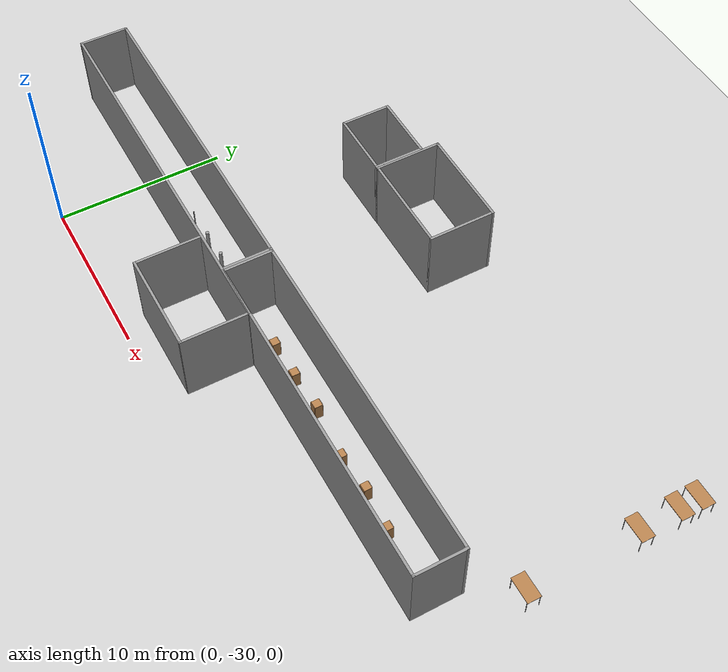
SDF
<sdf version="1.6">
 <world name="default">
  <model name="ground_plane">
   <static>1</static>
   <link name="link">
    <collision name="collision">
     <geometry><plane><normal>0 0 1</normal><size>320 320</size></plane></geometry>
     <surface>
      <contact><collide_bitmask>65535</collide_bitmask></contact>
      <friction><ode><mu>100</mu><mu2>50</mu2></ode></friction>
     </surface>
    </collision>
    <visual name="visual">
     <cast_shadows>0</cast_shadows>
     <geometry><plane><normal>0 0 1</normal><size>320 320</size></plane></geometry>
     <material>
      <script><uri>file://media/materials/scripts/gazebo.material</uri><name>Gazebo/Grey</name></script>
     </material>
    </visual>
   </link>
  </model>
  <model name="base3x20_2">
   <pose>1.5051 -23.232 0 0 -0 0</pose>
   <link name="Wall_16">
    <collision name="Wall_16_Collision">
     <geometry><box><size>3 0.15 6.555</size></box></geometry>
     <pose>0 0 1.25 0 -0 0</pose>
    </collision>
    <visual name="Wall_16_Visual">
     <pose>0 0 1.25 0 -0 0</pose>
     <geometry><box><size>3 0.15 6.555</size></box></geometry>
     <material>
      <script><uri>file://media/materials/scripts/gazebo.material</uri><name>Gazebo/Grey</name></script>
      <ambient>1 1 1 1</ambient>
     </material>
     <meta><layer>0</layer></meta>
    </visual>
    <pose>-9.925 -0 0 0 -0 -1.5708</pose>
   </link>
   <link name="Wall_17">
    <collision name="Wall_17_Collision">
     <geometry><box><size>20 0.15 6.555</size></box></geometry>
     <pose>0 0 1.25 0 -0 0</pose>
    </collision>
    <visual name="Wall_17_Visual">
     <pose>0 0 1.25 0 -0 0</pose>
     <geometry><box><size>20 0.15 6.555</size></box></geometry>
     <material>
      <script><uri>file://media/materials/scripts/gazebo.material</uri><name>Gazebo/Grey</name></script>
      <ambient>1 1 1 1</ambient>
     </material>
     <meta><layer>0</layer></meta>
    </visual>
    <pose>-0 -1.425 0 0 -0 0</pose>
   </link>
   <link name="Wall_18">
    <collision name="Wall_18_Collision">
     <geometry><box><size>3 0.15 6.555</size></box></geometry>
     <pose>0 0 1.25 0 -0 0</pose>
    </collision>
    <visual name="Wall_18_Visual">
     <pose>0 0 1.25 0 -0 0</pose>
     <geometry><box><size>3 0.15 6.555</size></box></geometry>
     <material>
      <script><uri>file://media/materials/scripts/gazebo.material</uri><name>Gazebo/Grey</name></script>
      <ambient>1 1 1 1</ambient>
     </material>
     <meta><layer>0</layer></meta>
    </visual>
    <pose>9.925 -0 0 0 -0 1.5708</pose>
   </link>
   <link name="Wall_19">
    <collision name="Wall_19_Collision">
     <geometry><box><size>20 0.15 6.555</size></box></geometry>
     <pose>0 0 1.25 0 -0 0</pose>
    </collision>
    <visual name="Wall_19_Visual">
     <pose>0 0 1.25 0 -0 0</pose>
     <geometry><box><size>20 0.15 6.555</size></box></geometry>
     <material>
      <script><uri>file://media/materials/scripts/gazebo.material</uri><name>Gazebo/Grey</name></script>
      <ambient>1 1 1 1</ambient>
     </material>
     <meta><layer>0</layer></meta>
    </visual>
    <pose>-0 1.425 0 0 -0 3.14159</pose>
   </link>
   <static>1</static>
  </model>
  <model name="base3x20_3">
   <pose>21.5045 -23.229 0 0 -0 0</pose>
   <link name="Wall_16">
    <collision name="Wall_16_Collision">
     <geometry><box><size>3 0.15 6.555</size></box></geometry>
     <pose>0 0 1.25 0 -0 0</pose>
    </collision>
    <visual name="Wall_16_Visual">
     <pose>0 0 1.25 0 -0 0</pose>
     <geometry><box><size>3 0.15 6.555</size></box></geometry>
     <material>
      <script><uri>file://media/materials/scripts/gazebo.material</uri><name>Gazebo/Grey</name></script>
      <ambient>1 1 1 1</ambient>
     </material>
     <meta><layer>0</layer></meta>
    </visual>
    <pose>-9.925 -0 0 0 -0 -1.5708</pose>
   </link>
   <link name="Wall_17">
    <collision name="Wall_17_Collision">
     <geometry><box><size>20 0.15 6.555</size></box></geometry>
     <pose>0 0 1.25 0 -0 0</pose>
    </collision>
    <visual name="Wall_17_Visual">
     <pose>0 0 1.25 0 -0 0</pose>
     <geometry><box><size>20 0.15 6.555</size></box></geometry>
     <material>
      <script><uri>file://media/materials/scripts/gazebo.material</uri><name>Gazebo/Grey</name></script>
      <ambient>1 1 1 1</ambient>
     </material>
     <meta><layer>0</layer></meta>
    </visual>
    <pose>-0 -1.425 0 0 -0 0</pose>
   </link>
   <link name="Wall_18">
    <collision name="Wall_18_Collision">
     <geometry><box><size>3 0.15 6.555</size></box></geometry>
     <pose>0 0 1.25 0 -0 0</pose>
    </collision>
    <visual name="Wall_18_Visual">
     <pose>0 0 1.25 0 -0 0</pose>
     <geometry><box><size>3 0.15 6.555</size></box></geometry>
     <material>
      <script><uri>file://media/materials/scripts/gazebo.material</uri><name>Gazebo/Grey</name></script>
      <ambient>1 1 1 1</ambient>
     </material>
     <meta><layer>0</layer></meta>
    </visual>
    <pose>9.925 -0 0 0 -0 1.5708</pose>
   </link>
   <link name="Wall_19">
    <collision name="Wall_19_Collision">
     <geometry><box><size>20 0.15 6.555</size></box></geometry>
     <pose>0 0 1.25 0 -0 0</pose>
    </collision>
    <visual name="Wall_19_Visual">
     <pose>0 0 1.25 0 -0 0</pose>
     <geometry><box><size>20 0.15 6.555</size></box></geometry>
     <material>
      <script><uri>file://media/materials/scripts/gazebo.material</uri><name>Gazebo/Grey</name></script>
      <ambient>1 1 1 1</ambient>
     </material>
     <meta><layer>0</layer></meta>
    </visual>
    <pose>-0 1.425 0 0 -0 3.14159</pose>
   </link>
   <static>1</static>
  </model>
  <model name="table_0">
   <static>1</static>
   <link name="link">
    <collision name="surface">
     <pose>0 0 1 0 -0 0</pose>
     <geometry><box><size>1.5 0.8 0.03</size></box></geometry>
     <surface><friction><ode><mu>0.6</mu><mu2>0.6</mu2></ode></friction></surface>
    </collision>
    <visual name="visual1">
     <pose>0 0 1 0 -0 0</pose>
     <geometry><box><size>1.5 0.8 0.03</size></box></geometry>
     <material>
      <script><uri>file://media/materials/scripts/gazebo.material</uri><name>Gazebo/Wood</name></script>
     </material>
    </visual>
    <collision name="front_left_leg">
     <pose>0.68 0.38 0.5 0 -0 0</pose>
     <geometry><cylinder><radius>0.02</radius><length>1</length></cylinder></geometry>
    </collision>
    <visual name="front_left_leg">
     <pose>0.68 0.38 0.5 0 -0 0</pose>
     <geometry><cylinder><radius>0.02</radius><length>1</length></cylinder></geometry>
     <material>
      <script><uri>file://media/materials/scripts/gazebo.material</uri><name>Gazebo/Grey</name></script>
     </material>
    </visual>
    <collision name="front_right_leg">
     <pose>0.68 -0.38 0.5 0 -0 0</pose>
     <geometry><cylinder><radius>0.02</radius><length>1</length></cylinder></geometry>
    </collision>
    <visual name="front_right_leg">
     <pose>0.68 -0.38 0.5 0 -0 0</pose>
     <geometry><cylinder><radius>0.02</radius><length>1</length></cylinder></geometry>
     <material>
      <script><uri>file://media/materials/scripts/gazebo.material</uri><name>Gazebo/Grey</name></script>
     </material>
    </visual>
    <collision name="back_right_leg">
     <pose>-0.68 -0.38 0.5 0 -0 0</pose>
     <geometry><cylinder><radius>0.02</radius><length>1</length></cylinder></geometry>
    </collision>
    <visual name="back_right_leg">
     <pose>-0.68 -0.38 0.5 0 -0 0</pose>
     <geometry><cylinder><radius>0.02</radius><length>1</length></cylinder></geometry>
     <material>
      <script><uri>file://media/materials/scripts/gazebo.material</uri><name>Gazebo/Grey</name></script>
     </material>
    </visual>
    <collision name="back_left_leg">
     <pose>-0.68 0.38 0.5 0 -0 0</pose>
     <geometry><cylinder><radius>0.02</radius><length>1</length></cylinder></geometry>
    </collision>
    <visual name="back_left_leg">
     <pose>-0.68 0.38 0.5 0 -0 0</pose>
     <geometry><cylinder><radius>0.02</radius><length>1</length></cylinder></geometry>
     <material>
      <script><uri>file://media/materials/scripts/gazebo.material</uri><name>Gazebo/Grey</name></script>
     </material>
    </visual>
   </link>
   <pose>33.0586 -19.3271 0 0 -0 0</pose>
  </model>
  <model name="table_5">
   <static>1</static>
   <link name="link">
    <collision name="surface">
     <pose>0 0 1 0 -0 0</pose>
     <geometry><box><size>1.5 0.8 0.03</size></box></geometry>
     <surface><friction><ode><mu>0.6</mu><mu2>0.6</mu2></ode></friction></surface>
    </collision>
    <visual name="visual1">
     <pose>0 0 1 0 -0 0</pose>
     <geometry><box><size>1.5 0.8 0.03</size></box></geometry>
     <material>
      <script><uri>file://media/materials/scripts/gazebo.material</uri><name>Gazebo/Wood</name></script>
     </material>
    </visual>
    <collision name="front_left_leg">
     <pose>0.68 0.38 0.5 0 -0 0</pose>
     <geometry><cylinder><radius>0.02</radius><length>1</length></cylinder></geometry>
    </collision>
    <visual name="front_left_leg">
     <pose>0.68 0.38 0.5 0 -0 0</pose>
     <geometry><cylinder><radius>0.02</radius><length>1</length></cylinder></geometry>
     <material>
      <script><uri>file://media/materials/scripts/gazebo.material</uri><name>Gazebo/Grey</name></script>
     </material>
    </visual>
    <collision name="front_right_leg">
     <pose>0.68 -0.38 0.5 0 -0 0</pose>
     <geometry><cylinder><radius>0.02</radius><length>1</length></cylinder></geometry>
    </collision>
    <visual name="front_right_leg">
     <pose>0.68 -0.38 0.5 0 -0 0</pose>
     <geometry><cylinder><radius>0.02</radius><length>1</length></cylinder></geometry>
     <material>
      <script><uri>file://media/materials/scripts/gazebo.material</uri><name>Gazebo/Grey</name></script>
     </material>
    </visual>
    <collision name="back_right_leg">
     <pose>-0.68 -0.38 0.5 0 -0 0</pose>
     <geometry><cylinder><radius>0.02</radius><length>1</length></cylinder></geometry>
    </collision>
    <visual name="back_right_leg">
     <pose>-0.68 -0.38 0.5 0 -0 0</pose>
     <geometry><cylinder><radius>0.02</radius><length>1</length></cylinder></geometry>
     <material>
      <script><uri>file://media/materials/scripts/gazebo.material</uri><name>Gazebo/Grey</name></script>
     </material>
    </visual>
    <collision name="back_left_leg">
     <pose>-0.68 0.38 0.5 0 -0 0</pose>
     <geometry><cylinder><radius>0.02</radius><length>1</length></cylinder></geometry>
    </collision>
    <visual name="back_left_leg">
     <pose>-0.68 0.38 0.5 0 -0 0</pose>
     <geometry><cylinder><radius>0.02</radius><length>1</length></cylinder></geometry>
     <material>
      <script><uri>file://media/materials/scripts/gazebo.material</uri><name>Gazebo/Grey</name></script>
     </material>
    </visual>
   </link>
   <pose>33.0548 -12.7631 0 0 -0 0</pose>
  </model>
  <model name="table_7">
   <static>1</static>
   <link name="link">
    <collision name="surface">
     <pose>0 0 1 0 -0 0</pose>
     <geometry><box><size>1.5 0.8 0.03</size></box></geometry>
     <surface><friction><ode><mu>0.6</mu><mu2>0.6</mu2></ode></friction></surface>
    </collision>
    <visual name="visual1">
     <pose>0 0 1 0 -0 0</pose>
     <geometry><box><size>1.5 0.8 0.03</size></box></geometry>
     <material>
      <script><uri>file://media/materials/scripts/gazebo.material</uri><name>Gazebo/Wood</name></script>
     </material>
    </visual>
    <collision name="front_left_leg">
     <pose>0.68 0.38 0.5 0 -0 0</pose>
     <geometry><cylinder><radius>0.02</radius><length>1</length></cylinder></geometry>
    </collision>
    <visual name="front_left_leg">
     <pose>0.68 0.38 0.5 0 -0 0</pose>
     <geometry><cylinder><radius>0.02</radius><length>1</length></cylinder></geometry>
     <material>
      <script><uri>file://media/materials/scripts/gazebo.material</uri><name>Gazebo/Grey</name></script>
     </material>
    </visual>
    <collision name="front_right_leg">
     <pose>0.68 -0.38 0.5 0 -0 0</pose>
     <geometry><cylinder><radius>0.02</radius><length>1</length></cylinder></geometry>
    </collision>
    <visual name="front_right_leg">
     <pose>0.68 -0.38 0.5 0 -0 0</pose>
     <geometry><cylinder><radius>0.02</radius><length>1</length></cylinder></geometry>
     <material>
      <script><uri>file://media/materials/scripts/gazebo.material</uri><name>Gazebo/Grey</name></script>
     </material>
    </visual>
    <collision name="back_right_leg">
     <pose>-0.68 -0.38 0.5 0 -0 0</pose>
     <geometry><cylinder><radius>0.02</radius><length>1</length></cylinder></geometry>
    </collision>
    <visual name="back_right_leg">
     <pose>-0.68 -0.38 0.5 0 -0 0</pose>
     <geometry><cylinder><radius>0.02</radius><length>1</length></cylinder></geometry>
     <material>
      <script><uri>file://media/materials/scripts/gazebo.material</uri><name>Gazebo/Grey</name></script>
     </material>
    </visual>
    <collision name="back_left_leg">
     <pose>-0.68 0.38 0.5 0 -0 0</pose>
     <geometry><cylinder><radius>0.02</radius><length>1</length></cylinder></geometry>
    </collision>
    <visual name="back_left_leg">
     <pose>-0.68 0.38 0.5 0 -0 0</pose>
     <geometry><cylinder><radius>0.02</radius><length>1</length></cylinder></geometry>
     <material>
      <script><uri>file://media/materials/scripts/gazebo.material</uri><name>Gazebo/Grey</name></script>
     </material>
    </visual>
   </link>
   <pose>33.0266 -10.3543 0 0 -0 0</pose>
  </model>
  <model name="table_8">
   <static>1</static>
   <link name="link">
    <collision name="surface">
     <pose>0 0 1 0 -0 0</pose>
     <geometry><box><size>1.5 0.8 0.03</size></box></geometry>
     <surface><friction><ode><mu>0.6</mu><mu2>0.6</mu2></ode></friction></surface>
    </collision>
    <visual name="visual1">
     <pose>0 0 1 0 -0 0</pose>
     <geometry><box><size>1.5 0.8 0.03</size></box></geometry>
     <material>
      <script><uri>file://media/materials/scripts/gazebo.material</uri><name>Gazebo/Wood</name></script>
     </material>
    </visual>
    <collision name="front_left_leg">
     <pose>0.68 0.38 0.5 0 -0 0</pose>
     <geometry><cylinder><radius>0.02</radius><length>1</length></cylinder></geometry>
    </collision>
    <visual name="front_left_leg">
     <pose>0.68 0.38 0.5 0 -0 0</pose>
     <geometry><cylinder><radius>0.02</radius><length>1</length></cylinder></geometry>
     <material>
      <script><uri>file://media/materials/scripts/gazebo.material</uri><name>Gazebo/Grey</name></script>
     </material>
    </visual>
    <collision name="front_right_leg">
     <pose>0.68 -0.38 0.5 0 -0 0</pose>
     <geometry><cylinder><radius>0.02</radius><length>1</length></cylinder></geometry>
    </collision>
    <visual name="front_right_leg">
     <pose>0.68 -0.38 0.5 0 -0 0</pose>
     <geometry><cylinder><radius>0.02</radius><length>1</length></cylinder></geometry>
     <material>
      <script><uri>file://media/materials/scripts/gazebo.material</uri><name>Gazebo/Grey</name></script>
     </material>
    </visual>
    <collision name="back_right_leg">
     <pose>-0.68 -0.38 0.5 0 -0 0</pose>
     <geometry><cylinder><radius>0.02</radius><length>1</length></cylinder></geometry>
    </collision>
    <visual name="back_right_leg">
     <pose>-0.68 -0.38 0.5 0 -0 0</pose>
     <geometry><cylinder><radius>0.02</radius><length>1</length></cylinder></geometry>
     <material>
      <script><uri>file://media/materials/scripts/gazebo.material</uri><name>Gazebo/Grey</name></script>
     </material>
    </visual>
    <collision name="back_left_leg">
     <pose>-0.68 0.38 0.5 0 -0 0</pose>
     <geometry><cylinder><radius>0.02</radius><length>1</length></cylinder></geometry>
    </collision>
    <visual name="back_left_leg">
     <pose>-0.68 0.38 0.5 0 -0 0</pose>
     <geometry><cylinder><radius>0.02</radius><length>1</length></cylinder></geometry>
     <material>
      <script><uri>file://media/materials/scripts/gazebo.material</uri><name>Gazebo/Grey</name></script>
     </material>
    </visual>
   </link>
   <pose>33.0125 -9.09753 0 0 -0 0</pose>
  </model>
  <model name="cabinet">
   <static>1</static>
   <link name="cabinet_bottom_plate">
    <inertial>
     <pose>0 0 -1 0 -0 0</pose>
     <inertia><ixx>2.05</ixx><ixy>0</ixy><ixz>0</ixz><iyy>2.05</iyy><iyz>0</iyz><izz>2.05</izz></inertia>
     <mass>25</mass>
    </inertial>
    <collision name="cabinet_bottom_plate_geom">
     <pose>0 0 0.01 0 -0 0</pose>
     <geometry><box><size>0.45 0.45 0.02</size></box></geometry>
    </collision>
    <visual name="cabinet_bottom_plate_geom_visual">
     <pose>0 0 0.01 0 -0 0</pose>
     <geometry><box><size>0.45 0.45 0.02</size></box></geometry>
     <material>
      <script><uri>file://media/materials/scripts/gazebo.material</uri><name>Gazebo/Wood</name></script>
     </material>
    </visual>
    <collision name="cabinet_bottom_plate_geom_cabinet_back_plate">
     <pose>0.235 0 0.51 0 -0 0</pose>
     <geometry><box><size>0.02 0.45 1.02</size></box></geometry>
    </collision>
    <visual name="cabinet_bottom_plate_geom_cabinet_back_plate_visual">
     <pose>0.235 0 0.51 0 -0 0</pose>
     <geometry><box><size>0.02 0.45 1.02</size></box></geometry>
     <material>
      <script><uri>file://media/materials/scripts/gazebo.material</uri><name>Gazebo/Wood</name></script>
     </material>
    </visual>
    <collision name="cabinet_bottom_plate_geom_cabinet_left_plate">
     <pose>0 0.235 0.51 0 -0 0</pose>
     <geometry><box><size>0.45 0.02 1.02</size></box></geometry>
    </collision>
    <visual name="cabinet_bottom_plate_geom_cabinet_left_plate_visual">
     <pose>0 0.235 0.51 0 -0 0</pose>
     <geometry><box><size>0.45 0.02 1.02</size></box></geometry>
     <material>
      <script><uri>file://media/materials/scripts/gazebo.material</uri><name>Gazebo/Wood</name></script>
     </material>
    </visual>
    <collision name="cabinet_bottom_plate_geom_cabinet_middle_plate">
     <pose>0 0 0.51 0 -0 0</pose>
     <geometry><box><size>0.45 0.45 0.02</size></box></geometry>
    </collision>
    <visual name="cabinet_bottom_plate_geom_cabinet_middle_plate_visual">
     <pose>0 0 0.51 0 -0 0</pose>
     <geometry><box><size>0.45 0.45 0.02</size></box></geometry>
     <material>
      <script><uri>file://media/materials/scripts/gazebo.material</uri><name>Gazebo/Wood</name></script>
     </material>
    </visual>
    <collision name="cabinet_bottom_plate_geom_cabinet_right_plate">
     <pose>0 -0.235 0.51 0 -0 0</pose>
     <geometry><box><size>0.45 0.02 1.02</size></box></geometry>
    </collision>
    <visual name="cabinet_bottom_plate_geom_cabinet_right_plate_visual">
     <pose>0 -0.235 0.51 0 -0 0</pose>
     <geometry><box><size>0.45 0.02 1.02</size></box></geometry>
     <material>
      <script><uri>file://media/materials/scripts/gazebo.material</uri><name>Gazebo/Wood</name></script>
     </material>
    </visual>
    <collision name="cabinet_bottom_plate_geom_cabinet_top_plate">
     <pose>0 0 1.01 0 -0 0</pose>
     <geometry><box><size>0.45 0.45 0.02</size></box></geometry>
    </collision>
    <visual name="cabinet_bottom_plate_geom_cabinet_top_plate_visual">
     <pose>0 0 1.01 0 -0 0</pose>
     <geometry><box><size>0.45 0.45 0.02</size></box></geometry>
     <material>
      <script><uri>file://media/materials/scripts/gazebo.material</uri><name>Gazebo/Wood</name></script>
     </material>
    </visual>
   </link>
   <pose>14.6067 -23.3531 0 0 -0 0</pose>
  </model>
  <model name="cabinet_0">
   <static>1</static>
   <link name="cabinet_bottom_plate">
    <inertial>
     <pose>0 0 -1 0 -0 0</pose>
     <inertia><ixx>2.05</ixx><ixy>0</ixy><ixz>0</ixz><iyy>2.05</iyy><iyz>0</iyz><izz>2.05</izz></inertia>
     <mass>25</mass>
    </inertial>
    <collision name="cabinet_bottom_plate_geom">
     <pose>0 0 0.01 0 -0 0</pose>
     <geometry><box><size>0.45 0.45 0.02</size></box></geometry>
    </collision>
    <visual name="cabinet_bottom_plate_geom_visual">
     <pose>0 0 0.01 0 -0 0</pose>
     <geometry><box><size>0.45 0.45 0.02</size></box></geometry>
     <material>
      <script><uri>file://media/materials/scripts/gazebo.material</uri><name>Gazebo/Wood</name></script>
     </material>
    </visual>
    <collision name="cabinet_bottom_plate_geom_cabinet_back_plate">
     <pose>0.235 0 0.51 0 -0 0</pose>
     <geometry><box><size>0.02 0.45 1.02</size></box></geometry>
    </collision>
    <visual name="cabinet_bottom_plate_geom_cabinet_back_plate_visual">
     <pose>0.235 0 0.51 0 -0 0</pose>
     <geometry><box><size>0.02 0.45 1.02</size></box></geometry>
     <material>
      <script><uri>file://media/materials/scripts/gazebo.material</uri><name>Gazebo/Wood</name></script>
     </material>
    </visual>
    <collision name="cabinet_bottom_plate_geom_cabinet_left_plate">
     <pose>0 0.235 0.51 0 -0 0</pose>
     <geometry><box><size>0.45 0.02 1.02</size></box></geometry>
    </collision>
    <visual name="cabinet_bottom_plate_geom_cabinet_left_plate_visual">
     <pose>0 0.235 0.51 0 -0 0</pose>
     <geometry><box><size>0.45 0.02 1.02</size></box></geometry>
     <material>
      <script><uri>file://media/materials/scripts/gazebo.material</uri><name>Gazebo/Wood</name></script>
     </material>
    </visual>
    <collision name="cabinet_bottom_plate_geom_cabinet_middle_plate">
     <pose>0 0 0.51 0 -0 0</pose>
     <geometry><box><size>0.45 0.45 0.02</size></box></geometry>
    </collision>
    <visual name="cabinet_bottom_plate_geom_cabinet_middle_plate_visual">
     <pose>0 0 0.51 0 -0 0</pose>
     <geometry><box><size>0.45 0.45 0.02</size></box></geometry>
     <material>
      <script><uri>file://media/materials/scripts/gazebo.material</uri><name>Gazebo/Wood</name></script>
     </material>
    </visual>
    <collision name="cabinet_bottom_plate_geom_cabinet_right_plate">
     <pose>0 -0.235 0.51 0 -0 0</pose>
     <geometry><box><size>0.45 0.02 1.02</size></box></geometry>
    </collision>
    <visual name="cabinet_bottom_plate_geom_cabinet_right_plate_visual">
     <pose>0 -0.235 0.51 0 -0 0</pose>
     <geometry><box><size>0.45 0.02 1.02</size></box></geometry>
     <material>
      <script><uri>file://media/materials/scripts/gazebo.material</uri><name>Gazebo/Wood</name></script>
     </material>
    </visual>
    <collision name="cabinet_bottom_plate_geom_cabinet_top_plate">
     <pose>0 0 1.01 0 -0 0</pose>
     <geometry><box><size>0.45 0.45 0.02</size></box></geometry>
    </collision>
    <visual name="cabinet_bottom_plate_geom_cabinet_top_plate_visual">
     <pose>0 0 1.01 0 -0 0</pose>
     <geometry><box><size>0.45 0.45 0.02</size></box></geometry>
     <material>
      <script><uri>file://media/materials/scripts/gazebo.material</uri><name>Gazebo/Wood</name></script>
     </material>
    </visual>
   </link>
   <pose>16.8557 -23.3254 0 0 -0 0</pose>
  </model>
  <model name="cabinet_1">
   <static>1</static>
   <link name="cabinet_bottom_plate">
    <inertial>
     <pose>0 0 -1 0 -0 0</pose>
     <inertia><ixx>2.05</ixx><ixy>0</ixy><ixz>0</ixz><iyy>2.05</iyy><iyz>0</iyz><izz>2.05</izz></inertia>
     <mass>25</mass>
    </inertial>
    <collision name="cabinet_bottom_plate_geom">
     <pose>0 0 0.01 0 -0 0</pose>
     <geometry><box><size>0.45 0.45 0.02</size></box></geometry>
    </collision>
    <visual name="cabinet_bottom_plate_geom_visual">
     <pose>0 0 0.01 0 -0 0</pose>
     <geometry><box><size>0.45 0.45 0.02</size></box></geometry>
     <material>
      <script><uri>file://media/materials/scripts/gazebo.material</uri><name>Gazebo/Wood</name></script>
     </material>
    </visual>
    <collision name="cabinet_bottom_plate_geom_cabinet_back_plate">
     <pose>0.235 0 0.51 0 -0 0</pose>
     <geometry><box><size>0.02 0.45 1.02</size></box></geometry>
    </collision>
    <visual name="cabinet_bottom_plate_geom_cabinet_back_plate_visual">
     <pose>0.235 0 0.51 0 -0 0</pose>
     <geometry><box><size>0.02 0.45 1.02</size></box></geometry>
     <material>
      <script><uri>file://media/materials/scripts/gazebo.material</uri><name>Gazebo/Wood</name></script>
     </material>
    </visual>
    <collision name="cabinet_bottom_plate_geom_cabinet_left_plate">
     <pose>0 0.235 0.51 0 -0 0</pose>
     <geometry><box><size>0.45 0.02 1.02</size></box></geometry>
    </collision>
    <visual name="cabinet_bottom_plate_geom_cabinet_left_plate_visual">
     <pose>0 0.235 0.51 0 -0 0</pose>
     <geometry><box><size>0.45 0.02 1.02</size></box></geometry>
     <material>
      <script><uri>file://media/materials/scripts/gazebo.material</uri><name>Gazebo/Wood</name></script>
     </material>
    </visual>
    <collision name="cabinet_bottom_plate_geom_cabinet_middle_plate">
     <pose>0 0 0.51 0 -0 0</pose>
     <geometry><box><size>0.45 0.45 0.02</size></box></geometry>
    </collision>
    <visual name="cabinet_bottom_plate_geom_cabinet_middle_plate_visual">
     <pose>0 0 0.51 0 -0 0</pose>
     <geometry><box><size>0.45 0.45 0.02</size></box></geometry>
     <material>
      <script><uri>file://media/materials/scripts/gazebo.material</uri><name>Gazebo/Wood</name></script>
     </material>
    </visual>
    <collision name="cabinet_bottom_plate_geom_cabinet_right_plate">
     <pose>0 -0.235 0.51 0 -0 0</pose>
     <geometry><box><size>0.45 0.02 1.02</size></box></geometry>
    </collision>
    <visual name="cabinet_bottom_plate_geom_cabinet_right_plate_visual">
     <pose>0 -0.235 0.51 0 -0 0</pose>
     <geometry><box><size>0.45 0.02 1.02</size></box></geometry>
     <material>
      <script><uri>file://media/materials/scripts/gazebo.material</uri><name>Gazebo/Wood</name></script>
     </material>
    </visual>
    <collision name="cabinet_bottom_plate_geom_cabinet_top_plate">
     <pose>0 0 1.01 0 -0 0</pose>
     <geometry><box><size>0.45 0.45 0.02</size></box></geometry>
    </collision>
    <visual name="cabinet_bottom_plate_geom_cabinet_top_plate_visual">
     <pose>0 0 1.01 0 -0 0</pose>
     <geometry><box><size>0.45 0.45 0.02</size></box></geometry>
     <material>
      <script><uri>file://media/materials/scripts/gazebo.material</uri><name>Gazebo/Wood</name></script>
     </material>
    </visual>
   </link>
   <pose>19.1939 -23.2091 0 0 -0 0</pose>
  </model>
  <model name="cabinet_2">
   <static>1</static>
   <link name="cabinet_bottom_plate">
    <inertial>
     <pose>0 0 -1 0 -0 0</pose>
     <inertia><ixx>2.05</ixx><ixy>0</ixy><ixz>0</ixz><iyy>2.05</iyy><iyz>0</iyz><izz>2.05</izz></inertia>
     <mass>25</mass>
    </inertial>
    <collision name="cabinet_bottom_plate_geom">
     <pose>0 0 0.01 0 -0 0</pose>
     <geometry><box><size>0.45 0.45 0.02</size></box></geometry>
    </collision>
    <visual name="cabinet_bottom_plate_geom_visual">
     <pose>0 0 0.01 0 -0 0</pose>
     <geometry><box><size>0.45 0.45 0.02</size></box></geometry>
     <material>
      <script><uri>file://media/materials/scripts/gazebo.material</uri><name>Gazebo/Wood</name></script>
     </material>
    </visual>
    <collision name="cabinet_bottom_plate_geom_cabinet_back_plate">
     <pose>0.235 0 0.51 0 -0 0</pose>
     <geometry><box><size>0.02 0.45 1.02</size></box></geometry>
    </collision>
    <visual name="cabinet_bottom_plate_geom_cabinet_back_plate_visual">
     <pose>0.235 0 0.51 0 -0 0</pose>
     <geometry><box><size>0.02 0.45 1.02</size></box></geometry>
     <material>
      <script><uri>file://media/materials/scripts/gazebo.material</uri><name>Gazebo/Wood</name></script>
     </material>
    </visual>
    <collision name="cabinet_bottom_plate_geom_cabinet_left_plate">
     <pose>0 0.235 0.51 0 -0 0</pose>
     <geometry><box><size>0.45 0.02 1.02</size></box></geometry>
    </collision>
    <visual name="cabinet_bottom_plate_geom_cabinet_left_plate_visual">
     <pose>0 0.235 0.51 0 -0 0</pose>
     <geometry><box><size>0.45 0.02 1.02</size></box></geometry>
     <material>
      <script><uri>file://media/materials/scripts/gazebo.material</uri><name>Gazebo/Wood</name></script>
     </material>
    </visual>
    <collision name="cabinet_bottom_plate_geom_cabinet_middle_plate">
     <pose>0 0 0.51 0 -0 0</pose>
     <geometry><box><size>0.45 0.45 0.02</size></box></geometry>
    </collision>
    <visual name="cabinet_bottom_plate_geom_cabinet_middle_plate_visual">
     <pose>0 0 0.51 0 -0 0</pose>
     <geometry><box><size>0.45 0.45 0.02</size></box></geometry>
     <material>
      <script><uri>file://media/materials/scripts/gazebo.material</uri><name>Gazebo/Wood</name></script>
     </material>
    </visual>
    <collision name="cabinet_bottom_plate_geom_cabinet_right_plate">
     <pose>0 -0.235 0.51 0 -0 0</pose>
     <geometry><box><size>0.45 0.02 1.02</size></box></geometry>
    </collision>
    <visual name="cabinet_bottom_plate_geom_cabinet_right_plate_visual">
     <pose>0 -0.235 0.51 0 -0 0</pose>
     <geometry><box><size>0.45 0.02 1.02</size></box></geometry>
     <material>
      <script><uri>file://media/materials/scripts/gazebo.material</uri><name>Gazebo/Wood</name></script>
     </material>
    </visual>
    <collision name="cabinet_bottom_plate_geom_cabinet_top_plate">
     <pose>0 0 1.01 0 -0 0</pose>
     <geometry><box><size>0.45 0.45 0.02</size></box></geometry>
    </collision>
    <visual name="cabinet_bottom_plate_geom_cabinet_top_plate_visual">
     <pose>0 0 1.01 0 -0 0</pose>
     <geometry><box><size>0.45 0.45 0.02</size></box></geometry>
     <material>
      <script><uri>file://media/materials/scripts/gazebo.material</uri><name>Gazebo/Wood</name></script>
     </material>
    </visual>
   </link>
   <pose>22.437 -23.5316 0 0 -0 0</pose>
  </model>
  <model name="cabinet_3">
   <static>1</static>
   <link name="cabinet_bottom_plate">
    <inertial>
     <pose>0 0 -1 0 -0 0</pose>
     <inertia><ixx>2.05</ixx><ixy>0</ixy><ixz>0</ixz><iyy>2.05</iyy><iyz>0</iyz><izz>2.05</izz></inertia>
     <mass>25</mass>
    </inertial>
    <collision name="cabinet_bottom_plate_geom">
     <pose>0 0 0.01 0 -0 0</pose>
     <geometry><box><size>0.45 0.45 0.02</size></box></geometry>
    </collision>
    <visual name="cabinet_bottom_plate_geom_visual">
     <pose>0 0 0.01 0 -0 0</pose>
     <geometry><box><size>0.45 0.45 0.02</size></box></geometry>
     <material>
      <script><uri>file://media/materials/scripts/gazebo.material</uri><name>Gazebo/Wood</name></script>
     </material>
    </visual>
    <collision name="cabinet_bottom_plate_geom_cabinet_back_plate">
     <pose>0.235 0 0.51 0 -0 0</pose>
     <geometry><box><size>0.02 0.45 1.02</size></box></geometry>
    </collision>
    <visual name="cabinet_bottom_plate_geom_cabinet_back_plate_visual">
     <pose>0.235 0 0.51 0 -0 0</pose>
     <geometry><box><size>0.02 0.45 1.02</size></box></geometry>
     <material>
      <script><uri>file://media/materials/scripts/gazebo.material</uri><name>Gazebo/Wood</name></script>
     </material>
    </visual>
    <collision name="cabinet_bottom_plate_geom_cabinet_left_plate">
     <pose>0 0.235 0.51 0 -0 0</pose>
     <geometry><box><size>0.45 0.02 1.02</size></box></geometry>
    </collision>
    <visual name="cabinet_bottom_plate_geom_cabinet_left_plate_visual">
     <pose>0 0.235 0.51 0 -0 0</pose>
     <geometry><box><size>0.45 0.02 1.02</size></box></geometry>
     <material>
      <script><uri>file://media/materials/scripts/gazebo.material</uri><name>Gazebo/Wood</name></script>
     </material>
    </visual>
    <collision name="cabinet_bottom_plate_geom_cabinet_middle_plate">
     <pose>0 0 0.51 0 -0 0</pose>
     <geometry><box><size>0.45 0.45 0.02</size></box></geometry>
    </collision>
    <visual name="cabinet_bottom_plate_geom_cabinet_middle_plate_visual">
     <pose>0 0 0.51 0 -0 0</pose>
     <geometry><box><size>0.45 0.45 0.02</size></box></geometry>
     <material>
      <script><uri>file://media/materials/scripts/gazebo.material</uri><name>Gazebo/Wood</name></script>
     </material>
    </visual>
    <collision name="cabinet_bottom_plate_geom_cabinet_right_plate">
     <pose>0 -0.235 0.51 0 -0 0</pose>
     <geometry><box><size>0.45 0.02 1.02</size></box></geometry>
    </collision>
    <visual name="cabinet_bottom_plate_geom_cabinet_right_plate_visual">
     <pose>0 -0.235 0.51 0 -0 0</pose>
     <geometry><box><size>0.45 0.02 1.02</size></box></geometry>
     <material>
      <script><uri>file://media/materials/scripts/gazebo.material</uri><name>Gazebo/Wood</name></script>
     </material>
    </visual>
    <collision name="cabinet_bottom_plate_geom_cabinet_top_plate">
     <pose>0 0 1.01 0 -0 0</pose>
     <geometry><box><size>0.45 0.45 0.02</size></box></geometry>
    </collision>
    <visual name="cabinet_bottom_plate_geom_cabinet_top_plate_visual">
     <pose>0 0 1.01 0 -0 0</pose>
     <geometry><box><size>0.45 0.45 0.02</size></box></geometry>
     <material>
      <script><uri>file://media/materials/scripts/gazebo.material</uri><name>Gazebo/Wood</name></script>
     </material>
    </visual>
   </link>
   <pose>24.6818 -23.3224 0 0 -0 0</pose>
  </model>
  <model name="cabinet_4">
   <static>1</static>
   <link name="cabinet_bottom_plate">
    <inertial>
     <pose>0 0 -1 0 -0 0</pose>
     <inertia><ixx>2.05</ixx><ixy>0</ixy><ixz>0</ixz><iyy>2.05</iyy><iyz>0</iyz><izz>2.05</izz></inertia>
     <mass>25</mass>
    </inertial>
    <collision name="cabinet_bottom_plate_geom">
     <pose>0 0 0.01 0 -0 0</pose>
     <geometry><box><size>0.45 0.45 0.02</size></box></geometry>
    </collision>
    <visual name="cabinet_bottom_plate_geom_visual">
     <pose>0 0 0.01 0 -0 0</pose>
     <geometry><box><size>0.45 0.45 0.02</size></box></geometry>
     <material>
      <script><uri>file://media/materials/scripts/gazebo.material</uri><name>Gazebo/Wood</name></script>
     </material>
    </visual>
    <collision name="cabinet_bottom_plate_geom_cabinet_back_plate">
     <pose>0.235 0 0.51 0 -0 0</pose>
     <geometry><box><size>0.02 0.45 1.02</size></box></geometry>
    </collision>
    <visual name="cabinet_bottom_plate_geom_cabinet_back_plate_visual">
     <pose>0.235 0 0.51 0 -0 0</pose>
     <geometry><box><size>0.02 0.45 1.02</size></box></geometry>
     <material>
      <script><uri>file://media/materials/scripts/gazebo.material</uri><name>Gazebo/Wood</name></script>
     </material>
    </visual>
    <collision name="cabinet_bottom_plate_geom_cabinet_left_plate">
     <pose>0 0.235 0.51 0 -0 0</pose>
     <geometry><box><size>0.45 0.02 1.02</size></box></geometry>
    </collision>
    <visual name="cabinet_bottom_plate_geom_cabinet_left_plate_visual">
     <pose>0 0.235 0.51 0 -0 0</pose>
     <geometry><box><size>0.45 0.02 1.02</size></box></geometry>
     <material>
      <script><uri>file://media/materials/scripts/gazebo.material</uri><name>Gazebo/Wood</name></script>
     </material>
    </visual>
    <collision name="cabinet_bottom_plate_geom_cabinet_middle_plate">
     <pose>0 0 0.51 0 -0 0</pose>
     <geometry><box><size>0.45 0.45 0.02</size></box></geometry>
    </collision>
    <visual name="cabinet_bottom_plate_geom_cabinet_middle_plate_visual">
     <pose>0 0 0.51 0 -0 0</pose>
     <geometry><box><size>0.45 0.45 0.02</size></box></geometry>
     <material>
      <script><uri>file://media/materials/scripts/gazebo.material</uri><name>Gazebo/Wood</name></script>
     </material>
    </visual>
    <collision name="cabinet_bottom_plate_geom_cabinet_right_plate">
     <pose>0 -0.235 0.51 0 -0 0</pose>
     <geometry><box><size>0.45 0.02 1.02</size></box></geometry>
    </collision>
    <visual name="cabinet_bottom_plate_geom_cabinet_right_plate_visual">
     <pose>0 -0.235 0.51 0 -0 0</pose>
     <geometry><box><size>0.45 0.02 1.02</size></box></geometry>
     <material>
      <script><uri>file://media/materials/scripts/gazebo.material</uri><name>Gazebo/Wood</name></script>
     </material>
    </visual>
    <collision name="cabinet_bottom_plate_geom_cabinet_top_plate">
     <pose>0 0 1.01 0 -0 0</pose>
     <geometry><box><size>0.45 0.45 0.02</size></box></geometry>
    </collision>
    <visual name="cabinet_bottom_plate_geom_cabinet_top_plate_visual">
     <pose>0 0 1.01 0 -0 0</pose>
     <geometry><box><size>0.45 0.45 0.02</size></box></geometry>
     <material>
      <script><uri>file://media/materials/scripts/gazebo.material</uri><name>Gazebo/Wood</name></script>
     </material>
    </visual>
   </link>
   <pose>27.1129 -23.4747 0 0 -0 0</pose>
  </model>
  <model name="unit_box_5mmx5mmx2m">
   <link name="link">
    <inertial>
     <mass>1</mass>
     <inertia>
      <ixx>0.166667</ixx>
      <ixy>0</ixy>
      <ixz>0</ixz>
      <iyy>0.166667</iyy>
      <iyz>0</iyz>
      <izz>0.166667</izz>
     </inertia>
    </inertial>
    <visual name="visual">
     <geometry><box><size>0.05 0.05 2</size></box></geometry>
     <material>
      <script><name>Gazebo/Grey</name><uri>file://media/materials/scripts/gazebo.material</uri></script>
      <shader type="vertex"><normal_map>__default__</normal_map></shader>
      <ambient>0.3 0.3 0.3 1</ambient>
      <diffuse>0.7 0.7 0.7 1</diffuse>
      <specular>0.01 0.01 0.01 1</specular>
      <emissive>0 0 0 1</emissive>
     </material>
    </visual>
    <collision name="collision">
     <geometry><box><size>1 1 1</size></box></geometry>
     <surface>
      <friction>
       <ode><mu>1</mu><mu2>1</mu2><fdir1>0 0 0</fdir1><slip1>0</slip1><slip2>0</slip2></ode>
       <torsional>
        <coefficient>1</coefficient>
        <patch_radius>0</patch_radius>
        <surface_radius>0</surface_radius>
        <use_patch_radius>1</use_patch_radius>
        <ode><slip>0</slip></ode>
       </torsional>
      </friction>
      <bounce><restitution_coefficient>0</restitution_coefficient><threshold>1e+06</threshold></bounce>
      <contact>
       <collide_without_contact>0</collide_without_contact>
       <collide_without_contact_bitmask>1</collide_without_contact_bitmask>
       <collide_bitmask>1</collide_bitmask>
       <ode>
        <soft_cfm>0</soft_cfm>
        <soft_erp>0.2</soft_erp>
        <kp>1e+13</kp>
        <kd>1</kd>
        <max_vel>0.01</max_vel>
        <min_depth>0</min_depth>
       </ode>
       <bullet>
        <split_impulse>1</split_impulse>
        <split_impulse_penetration_threshold>-0.01</split_impulse_penetration_threshold>
        <soft_cfm>0</soft_cfm>
        <soft_erp>0.2</soft_erp>
        <kp>1e+13</kp>
        <kd>1</kd>
       </bullet>
      </contact>
     </surface>
    </collision>
   </link>
   <static>0</static>
   <pose>4.52789 -23.4698 0.5 -0 -0 -0</pose>
  </model>
  <model name="unit_cylinder_r0.1_l2m">
   <link name="link">
    <inertial>
     <mass>1</mass>
     <inertia><ixx>0.145833</ixx><ixy>0</ixy><ixz>0</ixz><iyy>0.145833</iyy><iyz>0</iyz><izz>0.125</izz></inertia>
    </inertial>
    <visual name="visual">
     <geometry><cylinder><radius>0.1</radius><length>2</length></cylinder></geometry>
     <material>
      <script><name>Gazebo/Grey</name><uri>file://media/materials/scripts/gazebo.material</uri></script>
      <shader type="vertex"><normal_map>__default__</normal_map></shader>
      <ambient>0.3 0.3 0.3 1</ambient>
      <diffuse>0.7 0.7 0.7 1</diffuse>
      <specular>0.01 0.01 0.01 1</specular>
      <emissive>0 0 0 1</emissive>
     </material>
    </visual>
    <collision name="collision">
     <geometry><cylinder><radius>0.5</radius><length>1</length></cylinder></geometry>
     <surface>
      <friction>
       <ode><mu>1</mu><mu2>1</mu2><fdir1>0 0 0</fdir1><slip1>0</slip1><slip2>0</slip2></ode>
       <torsional>
        <coefficient>1</coefficient>
        <patch_radius>0</patch_radius>
        <surface_radius>0</surface_radius>
        <use_patch_radius>1</use_patch_radius>
        <ode><slip>0</slip></ode>
       </torsional>
      </friction>
      <bounce><restitution_coefficient>0</restitution_coefficient><threshold>1e+06</threshold></bounce>
      <contact>
       <collide_without_contact>0</collide_without_contact>
       <collide_without_contact_bitmask>1</collide_without_contact_bitmask>
       <collide_bitmask>1</collide_bitmask>
       <ode>
        <soft_cfm>0</soft_cfm>
        <soft_erp>0.2</soft_erp>
        <kp>1e+13</kp>
        <kd>1</kd>
        <max_vel>0.01</max_vel>
        <min_depth>0</min_depth>
       </ode>
       <bullet>
        <split_impulse>1</split_impulse>
        <split_impulse_penetration_threshold>-0.01</split_impulse_penetration_threshold>
        <soft_cfm>0</soft_cfm>
        <soft_erp>0.2</soft_erp>
        <kp>1e+13</kp>
        <kd>1</kd>
       </bullet>
      </contact>
     </surface>
    </collision>
   </link>
   <static>0</static>
   <pose>6.32736 -23.4491 0.499953 9.4e-05 9.4e-05 0.000138</pose>
  </model>
  <model name="unit_cylinder_r0.1_l2m_0">
   <link name="link">
    <inertial>
     <mass>1</mass>
     <inertia><ixx>0.145833</ixx><ixy>0</ixy><ixz>0</ixz><iyy>0.145833</iyy><iyz>0</iyz><izz>0.125</izz></inertia>
    </inertial>
    <visual name="visual">
     <geometry><cylinder><radius>0.1</radius><length>2</length></cylinder></geometry>
     <material>
      <script><name>Gazebo/Grey</name><uri>file://media/materials/scripts/gazebo.material</uri></script>
      <shader type="vertex"><normal_map>__default__</normal_map></shader>
      <ambient>0.3 0.3 0.3 1</ambient>
      <diffuse>0.7 0.7 0.7 1</diffuse>
      <specular>0.01 0.01 0.01 1</specular>
      <emissive>0 0 0 1</emissive>
     </material>
    </visual>
    <collision name="collision">
     <geometry><cylinder><radius>0.5</radius><length>1</length></cylinder></geometry>
     <surface>
      <friction>
       <ode><mu>1</mu><mu2>1</mu2><fdir1>0 0 0</fdir1><slip1>0</slip1><slip2>0</slip2></ode>
       <torsional>
        <coefficient>1</coefficient>
        <patch_radius>0</patch_radius>
        <surface_radius>0</surface_radius>
        <use_patch_radius>1</use_patch_radius>
        <ode><slip>0</slip></ode>
       </torsional>
      </friction>
      <bounce><restitution_coefficient>0</restitution_coefficient><threshold>1e+06</threshold></bounce>
      <contact>
       <collide_without_contact>0</collide_without_contact>
       <collide_without_contact_bitmask>1</collide_without_contact_bitmask>
       <collide_bitmask>1</collide_bitmask>
       <ode>
        <soft_cfm>0</soft_cfm>
        <soft_erp>0.2</soft_erp>
        <kp>1e+13</kp>
        <kd>1</kd>
        <max_vel>0.01</max_vel>
        <min_depth>0</min_depth>
       </ode>
       <bullet>
        <split_impulse>1</split_impulse>
        <split_impulse_penetration_threshold>-0.01</split_impulse_penetration_threshold>
        <soft_cfm>0</soft_cfm>
        <soft_erp>0.2</soft_erp>
        <kp>1e+13</kp>
        <kd>1</kd>
       </bullet>
      </contact>
     </surface>
    </collision>
   </link>
   <static>0</static>
   <pose>8.03763 -23.4298 0.499953 9.4e-05 9.4e-05 0.000138</pose>
  </model>
  <model name="base4x6_9">
   <pose>11.7856 -26.6039 0 0 -0 0</pose>
   <link name="Wall_23">
    <collision name="Wall_23_Collision">
     <geometry><box><size>4 0.15 6.555</size></box></geometry>
     <pose>0 0 1.25 0 -0 0</pose>
    </collision>
    <visual name="Wall_23_Visual">
     <pose>0 0 1.25 0 -0 0</pose>
     <geometry><box><size>4 0.15 6.555</size></box></geometry>
     <material>
      <script><uri>file://media/materials/scripts/gazebo.material</uri><name>Gazebo/Grey</name></script>
      <ambient>1 1 1 1</ambient>
     </material>
     <meta><layer>0</layer></meta>
    </visual>
    <pose>-2.925 0 0 0 -0 -1.5708</pose>
   </link>
   <link name="Wall_24">
    <collision name="Wall_24_Collision">
     <geometry><box><size>6 0.15 6.555</size></box></geometry>
     <pose>0 0 1.25 0 -0 0</pose>
    </collision>
    <visual name="Wall_24_Visual">
     <pose>0 0 1.25 0 -0 0</pose>
     <geometry><box><size>6 0.15 6.555</size></box></geometry>
     <material>
      <script><uri>file://media/materials/scripts/gazebo.material</uri><name>Gazebo/Grey</name></script>
      <ambient>1 1 1 1</ambient>
     </material>
     <meta><layer>0</layer></meta>
    </visual>
    <pose>-0 -1.925 0 0 -0 0</pose>
   </link>
   <link name="Wall_25">
    <collision name="Wall_25_Collision">
     <geometry><box><size>4 0.15 6.555</size></box></geometry>
     <pose>0 0 1.25 0 -0 0</pose>
    </collision>
    <visual name="Wall_25_Visual">
     <pose>0 0 1.25 0 -0 0</pose>
     <geometry><box><size>4 0.15 6.555</size></box></geometry>
     <material>
      <script><uri>file://media/materials/scripts/gazebo.material</uri><name>Gazebo/Grey</name></script>
      <ambient>1 1 1 1</ambient>
     </material>
     <meta><layer>0</layer></meta>
    </visual>
    <pose>2.925 0 0 0 -0 1.5708</pose>
   </link>
   <link name="Wall_26">
    <collision name="Wall_26_Collision">
     <geometry><box><size>6 0.15 6.555</size></box></geometry>
     <pose>0 0 1.25 0 -0 0</pose>
    </collision>
    <visual name="Wall_26_Visual">
     <pose>0 0 1.25 0 -0 0</pose>
     <geometry><box><size>6 0.15 6.555</size></box></geometry>
     <material>
      <script><uri>file://media/materials/scripts/gazebo.material</uri><name>Gazebo/Grey</name></script>
      <ambient>1 1 1 1</ambient>
     </material>
     <meta><layer>0</layer></meta>
    </visual>
    <pose>-0 1.925 0 0 -0 3.14159</pose>
   </link>
   <static>1</static>
  </model>
  <model name="base4x6_10_clone_0_clone">
   <pose>11.9853 -12.0427 0 0 -0 0</pose>
   <link name="Wall_23">
    <collision name="Wall_23_Collision">
     <geometry><box><size>4 0.15 6.555</size></box></geometry>
     <pose>0 0 1.25 0 -0 0</pose>
    </collision>
    <visual name="Wall_23_Visual">
     <pose>0 0 1.25 0 -0 0</pose>
     <geometry><box><size>4 0.15 6.555</size></box></geometry>
     <material>
      <script><uri>file://media/materials/scripts/gazebo.material</uri><name>Gazebo/Grey</name></script>
      <ambient>1 1 1 1</ambient>
     </material>
     <meta><layer>0</layer></meta>
    </visual>
    <pose>-2.925 0 0 0 -0 -1.5708</pose>
   </link>
   <link name="Wall_24">
    <collision name="Wall_24_Collision">
     <geometry><box><size>6 0.15 6.555</size></box></geometry>
     <pose>0 0 1.25 0 -0 0</pose>
    </collision>
    <visual name="Wall_24_Visual">
     <pose>0 0 1.25 0 -0 0</pose>
     <geometry><box><size>6 0.15 6.555</size></box></geometry>
     <material>
      <script><uri>file://media/materials/scripts/gazebo.material</uri><name>Gazebo/Grey</name></script>
      <ambient>1 1 1 1</ambient>
     </material>
     <meta><layer>0</layer></meta>
    </visual>
    <pose>-0 -1.925 0 0 -0 0</pose>
   </link>
   <link name="Wall_25">
    <collision name="Wall_25_Collision">
     <geometry><box><size>4 0.15 6.555</size></box></geometry>
     <pose>0 0 1.25 0 -0 0</pose>
    </collision>
    <visual name="Wall_25_Visual">
     <pose>0 0 1.25 0 -0 0</pose>
     <geometry><box><size>4 0.15 6.555</size></box></geometry>
     <material>
      <script><uri>file://media/materials/scripts/gazebo.material</uri><name>Gazebo/Grey</name></script>
      <ambient>1 1 1 1</ambient>
     </material>
     <meta><layer>0</layer></meta>
    </visual>
    <pose>2.925 0 0 0 -0 1.5708</pose>
   </link>
   <link name="Wall_26">
    <collision name="Wall_26_Collision">
     <geometry><box><size>6 0.15 6.555</size></box></geometry>
     <pose>0 0 1.25 0 -0 0</pose>
    </collision>
    <visual name="Wall_26_Visual">
     <pose>0 0 1.25 0 -0 0</pose>
     <geometry><box><size>6 0.15 6.555</size></box></geometry>
     <material>
      <script><uri>file://media/materials/scripts/gazebo.material</uri><name>Gazebo/Grey</name></script>
      <ambient>1 1 1 1</ambient>
     </material>
     <meta><layer>0</layer></meta>
    </visual>
    <pose>-0 1.925 0 0 -0 3.14159</pose>
   </link>
   <static>1</static>
  </model>
  <model name="base3x4_11_clone_clone">
   <pose>7.01453 -12.5529 0 0 -0 0</pose>
   <link name="Wall_18">
    <collision name="Wall_18_Collision">
     <geometry><box><size>3 0.15 6.555</size></box></geometry>
     <pose>0 0 1.25 0 -0 0</pose>
    </collision>
    <visual name="Wall_18_Visual">
     <pose>0 0 1.25 0 -0 0</pose>
     <geometry><box><size>3 0.15 6.555</size></box></geometry>
     <material>
      <script><uri>file://media/materials/scripts/gazebo.material</uri><name>Gazebo/Grey</name></script>
      <ambient>1 1 1 1</ambient>
     </material>
     <meta><layer>0</layer></meta>
    </visual>
    <pose>-1.925 -0 0 0 -0 -1.5708</pose>
   </link>
   <link name="Wall_19">
    <collision name="Wall_19_Collision">
     <geometry><box><size>4 0.15 6.555</size></box></geometry>
     <pose>0 0 1.25 0 -0 0</pose>
    </collision>
    <visual name="Wall_19_Visual">
     <pose>0 0 1.25 0 -0 0</pose>
     <geometry><box><size>4 0.15 6.555</size></box></geometry>
     <material>
      <script><uri>file://media/materials/scripts/gazebo.material</uri><name>Gazebo/Grey</name></script>
      <ambient>1 1 1 1</ambient>
     </material>
     <meta><layer>0</layer></meta>
    </visual>
    <pose>-0 -1.425 0 0 -0 0</pose>
   </link>
   <link name="Wall_20">
    <collision name="Wall_20_Collision">
     <geometry><box><size>3 0.15 6.555</size></box></geometry>
     <pose>0 0 1.25 0 -0 0</pose>
    </collision>
    <visual name="Wall_20_Visual">
     <pose>0 0 1.25 0 -0 0</pose>
     <geometry><box><size>3 0.15 6.555</size></box></geometry>
     <material>
      <script><uri>file://media/materials/scripts/gazebo.material</uri><name>Gazebo/Grey</name></script>
      <ambient>1 1 1 1</ambient>
     </material>
     <meta><layer>0</layer></meta>
    </visual>
    <pose>1.925 -0 0 0 -0 1.5708</pose>
   </link>
   <link name="Wall_21">
    <collision name="Wall_21_Collision">
     <geometry><box><size>4 0.15 6.555</size></box></geometry>
     <pose>0 0 1.25 0 -0 0</pose>
    </collision>
    <visual name="Wall_21_Visual">
     <pose>0 0 1.25 0 -0 0</pose>
     <geometry><box><size>4 0.15 6.555</size></box></geometry>
     <material>
      <script><uri>file://media/materials/scripts/gazebo.material</uri><name>Gazebo/Grey</name></script>
      <ambient>1 1 1 1</ambient>
     </material>
     <meta><layer>0</layer></meta>
    </visual>
    <pose>-0 1.425 0 0 -0 3.14159</pose>
   </link>
   <static>1</static>
  </model>
 </world>
</sdf>
